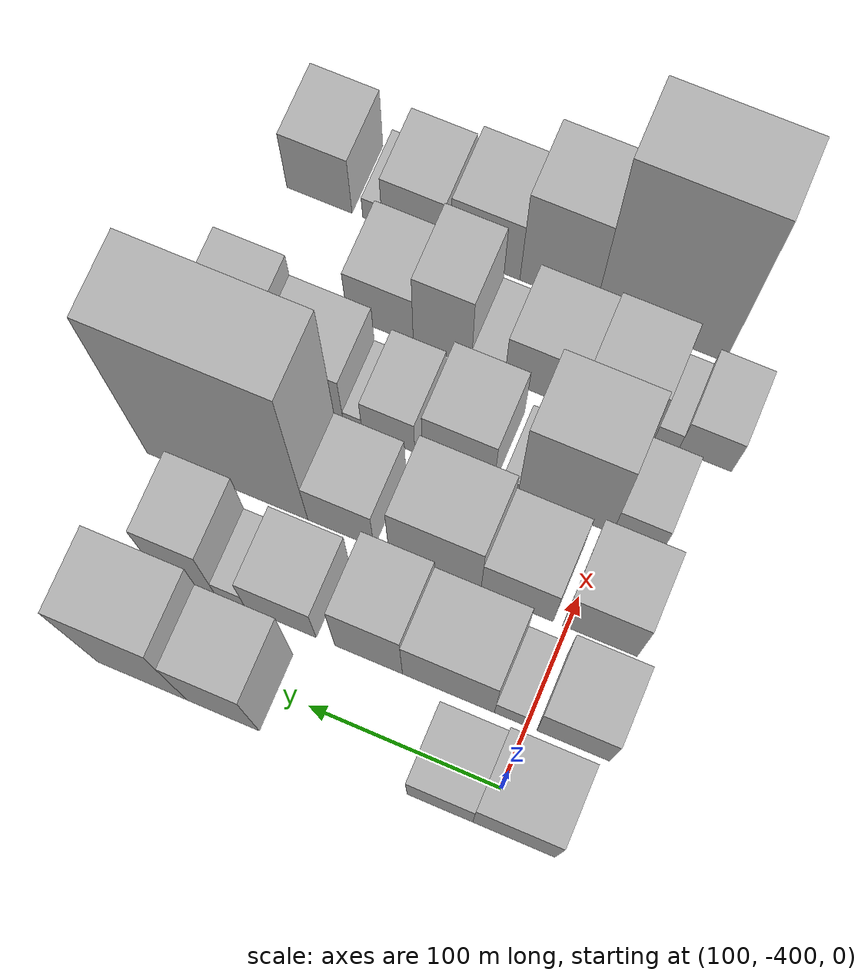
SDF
<sdf version="1.6">
 <world name="default">
  <model name="building_12">
   <static>1</static>
   <pose>100.0000 -414.7524 0 0.000000 0.000000 0.000000</pose>
   <link name="link">
    <pose>0 0 39.00 0 0 0</pose>
    <collision name="collision"><geometry><box><size>40.0000 42.1300 78.0000</size></box></geometry></collision>
    <visual name="visual">
     <cast_shadows>0</cast_shadows>
     <geometry><box><size>40.0000 42.1300 78.0000</size></box></geometry>
     <material>
      <script>
       <uri>model://HANNAS_wall/materials/scripts</uri>
       <uri>model://HANNAS_wall/materials/textures</uri>
       <name>vrc/HANNAS_wall</name>
      </script>
     </material>
    </visual>
   </link>
  </model>
  <model name="building_13">
   <static>1</static>
   <pose>100.0000 -376.7579 0 0.000000 0.000000 0.000000</pose>
   <link name="link">
    <pose>0 0 31.50 0 0 0</pose>
    <collision name="collision"><geometry><box><size>40.0000 33.8590 63.0000</size></box></geometry></collision>
    <visual name="visual">
     <cast_shadows>0</cast_shadows>
     <geometry><box><size>40.0000 33.8590 63.0000</size></box></geometry>
     <material>
      <script>
       <uri>model://HANNAS_wall/materials/scripts</uri>
       <uri>model://HANNAS_wall/materials/textures</uri>
       <name>vrc/HANNAS_wall</name>
      </script>
     </material>
    </visual>
   </link>
  </model>
  <model name="building_14">
   <static>1</static>
   <pose>100.0000 -263.6347 0 0.000000 0.000000 0.000000</pose>
   <link name="link">
    <pose>0 0 55.50 0 0 0</pose>
    <collision name="collision"><geometry><box><size>40.0000 38.1291 111.0000</size></box></geometry></collision>
    <visual name="visual">
     <cast_shadows>0</cast_shadows>
     <geometry><box><size>40.0000 38.1291 111.0000</size></box></geometry>
     <material>
      <script>
       <uri>model://HANNAS_wall/materials/scripts</uri>
       <uri>model://HANNAS_wall/materials/textures</uri>
       <name>vrc/HANNAS_wall</name>
      </script>
     </material>
    </visual>
   </link>
  </model>
  <model name="building_15">
   <static>1</static>
   <pose>100.0000 -220.7925 0 0.000000 0.000000 0.000000</pose>
   <link name="link">
    <pose>0 0 73.50 0 0 0</pose>
    <collision name="collision"><geometry><box><size>40.0000 47.5555 147.0000</size></box></geometry></collision>
    <visual name="visual">
     <cast_shadows>0</cast_shadows>
     <geometry><box><size>40.0000 47.5555 147.0000</size></box></geometry>
     <material>
      <script>
       <uri>model://HANNAS_wall/materials/scripts</uri>
       <uri>model://HANNAS_wall/materials/textures</uri>
       <name>vrc/HANNAS_wall</name>
      </script>
     </material>
    </visual>
   </link>
  </model>
  <model name="building_61">
   <static>1</static>
   <pose>152.0000 -424.2948 0 0.000000 0.000000 0.000000</pose>
   <link name="link">
    <pose>0 0 31.50 0 0 0</pose>
    <collision name="collision"><geometry><box><size>40.0000 37.7740 63.0000</size></box></geometry></collision>
    <visual name="visual">
     <cast_shadows>0</cast_shadows>
     <geometry><box><size>40.0000 37.7740 63.0000</size></box></geometry>
     <material>
      <script>
       <uri>model://HANNAS_wall/materials/scripts</uri>
       <uri>model://HANNAS_wall/materials/textures</uri>
       <name>vrc/HANNAS_wall</name>
      </script>
     </material>
    </visual>
   </link>
  </model>
  <model name="building_62">
   <static>1</static>
   <pose>152.0000 -392.3795 0 0.000000 0.000000 0.000000</pose>
   <link name="link">
    <pose>0 0 16.50 0 0 0</pose>
    <collision name="collision"><geometry><box><size>40.0000 18.0567 33.0000</size></box></geometry></collision>
    <visual name="visual">
     <cast_shadows>0</cast_shadows>
     <geometry><box><size>40.0000 18.0567 33.0000</size></box></geometry>
     <material>
      <script>
       <uri>model://HANNAS_wall/materials/scripts</uri>
       <uri>model://HANNAS_wall/materials/textures</uri>
       <name>vrc/HANNAS_wall</name>
      </script>
     </material>
    </visual>
   </link>
  </model>
  <model name="building_63">
   <static>1</static>
   <pose>152.0000 -359.3087 0 0.000000 0.000000 0.000000</pose>
   <link name="link">
    <pose>0 0 42.00 0 0 0</pose>
    <collision name="collision"><geometry><box><size>40.0000 48.0849 84.0000</size></box></geometry></collision>
    <visual name="visual">
     <cast_shadows>0</cast_shadows>
     <geometry><box><size>40.0000 48.0849 84.0000</size></box></geometry>
     <material>
      <script>
       <uri>model://HANNAS_wall/materials/scripts</uri>
       <uri>model://HANNAS_wall/materials/textures</uri>
       <name>vrc/HANNAS_wall</name>
      </script>
     </material>
    </visual>
   </link>
  </model>
  <model name="building_64">
   <static>1</static>
   <pose>152.0000 -317.4862 0 0.000000 0.000000 0.000000</pose>
   <link name="link">
    <pose>0 0 48.00 0 0 0</pose>
    <collision name="collision"><geometry><box><size>40.0000 35.5601 96.0000</size></box></geometry></collision>
    <visual name="visual">
     <cast_shadows>0</cast_shadows>
     <geometry><box><size>40.0000 35.5601 96.0000</size></box></geometry>
     <material>
      <script>
       <uri>model://HANNAS_wall/materials/scripts</uri>
       <uri>model://HANNAS_wall/materials/textures</uri>
       <name>vrc/HANNAS_wall</name>
      </script>
     </material>
    </visual>
   </link>
  </model>
  <model name="building_65">
   <static>1</static>
   <pose>152.0000 -270.8084 0 0.000000 0.000000 0.000000</pose>
   <link name="link">
    <pose>0 0 31.50 0 0 0</pose>
    <collision name="collision"><geometry><box><size>40.0000 37.7956 63.0000</size></box></geometry></collision>
    <visual name="visual">
     <cast_shadows>0</cast_shadows>
     <geometry><box><size>40.0000 37.7956 63.0000</size></box></geometry>
     <material>
      <script>
       <uri>model://HANNAS_wall/materials/scripts</uri>
       <uri>model://HANNAS_wall/materials/textures</uri>
       <name>vrc/HANNAS_wall</name>
      </script>
     </material>
    </visual>
   </link>
  </model>
  <model name="building_66">
   <static>1</static>
   <pose>152.0000 -243.9761 0 0.000000 0.000000 0.000000</pose>
   <link name="link">
    <pose>0 0 15.00 0 0 0</pose>
    <collision name="collision"><geometry><box><size>40.0000 15.8689 30.0000</size></box></geometry></collision>
    <visual name="visual">
     <cast_shadows>0</cast_shadows>
     <geometry><box><size>40.0000 15.8689 30.0000</size></box></geometry>
     <material>
      <script>
       <uri>model://HANNAS_wall/materials/scripts</uri>
       <uri>model://HANNAS_wall/materials/textures</uri>
       <name>vrc/HANNAS_wall</name>
      </script>
     </material>
    </visual>
   </link>
  </model>
  <model name="building_67">
   <static>1</static>
   <pose>152.0000 -219.7628 0 0.000000 0.000000 0.000000</pose>
   <link name="link">
    <pose>0 0 46.50 0 0 0</pose>
    <collision name="collision"><geometry><box><size>40.0000 32.5576 93.0000</size></box></geometry></collision>
    <visual name="visual">
     <cast_shadows>0</cast_shadows>
     <geometry><box><size>40.0000 32.5576 93.0000</size></box></geometry>
     <material>
      <script>
       <uri>model://HANNAS_wall/materials/scripts</uri>
       <uri>model://HANNAS_wall/materials/textures</uri>
       <name>vrc/HANNAS_wall</name>
      </script>
     </material>
    </visual>
   </link>
  </model>
  <model name="building_108">
   <static>1</static>
   <pose>204.0000 -417.3247 0 0.000000 0.000000 0.000000</pose>
   <link name="link">
    <pose>0 0 37.50 0 0 0</pose>
    <collision name="collision"><geometry><box><size>40.0000 39.0101 75.0000</size></box></geometry></collision>
    <visual name="visual">
     <cast_shadows>0</cast_shadows>
     <geometry><box><size>40.0000 39.0101 75.0000</size></box></geometry>
     <material>
      <script>
       <uri>model://HANNAS_wall/materials/scripts</uri>
       <uri>model://HANNAS_wall/materials/textures</uri>
       <name>vrc/HANNAS_wall</name>
      </script>
     </material>
    </visual>
   </link>
  </model>
  <model name="building_109">
   <static>1</static>
   <pose>204.0000 -373.7194 0 0.000000 0.000000 0.000000</pose>
   <link name="link">
    <pose>0 0 33.00 0 0 0</pose>
    <collision name="collision"><geometry><box><size>40.0000 38.2007 66.0000</size></box></geometry></collision>
    <visual name="visual">
     <cast_shadows>0</cast_shadows>
     <geometry><box><size>40.0000 38.2007 66.0000</size></box></geometry>
     <material>
      <script>
       <uri>model://HANNAS_wall/materials/scripts</uri>
       <uri>model://HANNAS_wall/materials/textures</uri>
       <name>vrc/HANNAS_wall</name>
      </script>
     </material>
    </visual>
   </link>
  </model>
  <model name="building_110">
   <static>1</static>
   <pose>204.0000 -330.2801 0 0.000000 0.000000 0.000000</pose>
   <link name="link">
    <pose>0 0 45.00 0 0 0</pose>
    <collision name="collision"><geometry><box><size>40.0000 48.6779 90.0000</size></box></geometry></collision>
    <visual name="visual">
     <cast_shadows>0</cast_shadows>
     <geometry><box><size>40.0000 48.6779 90.0000</size></box></geometry>
     <material>
      <script>
       <uri>model://HANNAS_wall/materials/scripts</uri>
       <uri>model://HANNAS_wall/materials/textures</uri>
       <name>vrc/HANNAS_wall</name>
      </script>
     </material>
    </visual>
   </link>
  </model>
  <model name="building_111">
   <static>1</static>
   <pose>204.0000 -280.1822 0 0.000000 0.000000 0.000000</pose>
   <link name="link">
    <pose>0 0 33.00 0 0 0</pose>
    <collision name="collision"><geometry><box><size>40.0000 35.5178 66.0000</size></box></geometry></collision>
    <visual name="visual">
     <cast_shadows>0</cast_shadows>
     <geometry><box><size>40.0000 35.5178 66.0000</size></box></geometry>
     <material>
      <script>
       <uri>model://HANNAS_wall/materials/scripts</uri>
       <uri>model://HANNAS_wall/materials/textures</uri>
       <name>vrc/HANNAS_wall</name>
      </script>
     </material>
    </visual>
   </link>
  </model>
  <model name="building_112">
   <static>1</static>
   <pose>204.0000 -218.7964 0 0.000000 0.000000 0.000000</pose>
   <link name="link">
    <pose>0 0 109.50 0 0 0</pose>
    <collision name="collision"><geometry><box><size>40.0000 87.2537 219.0000</size></box></geometry></collision>
    <visual name="visual">
     <cast_shadows>0</cast_shadows>
     <geometry><box><size>40.0000 87.2537 219.0000</size></box></geometry>
     <material>
      <script>
       <uri>model://HANNAS_wall/materials/scripts</uri>
       <uri>model://HANNAS_wall/materials/textures</uri>
       <name>vrc/HANNAS_wall</name>
      </script>
     </material>
    </visual>
   </link>
  </model>
  <model name="building_154">
   <static>1</static>
   <pose>256.0000 -416.1713 0 0.000000 0.000000 0.000000</pose>
   <link name="link">
    <pose>0 0 24.00 0 0 0</pose>
    <collision name="collision"><geometry><box><size>40.0000 25.7418 48.0000</size></box></geometry></collision>
    <visual name="visual">
     <cast_shadows>0</cast_shadows>
     <geometry><box><size>40.0000 25.7418 48.0000</size></box></geometry>
     <material>
      <script>
       <uri>model://HANNAS_wall/materials/scripts</uri>
       <uri>model://HANNAS_wall/materials/textures</uri>
       <name>vrc/HANNAS_wall</name>
      </script>
     </material>
    </visual>
   </link>
  </model>
  <model name="building_155">
   <static>1</static>
   <pose>256.0000 -378.1142 0 0.000000 0.000000 0.000000</pose>
   <link name="link">
    <pose>0 0 63.00 0 0 0</pose>
    <collision name="collision"><geometry><box><size>40.0000 50.3724 126.0000</size></box></geometry></collision>
    <visual name="visual">
     <cast_shadows>0</cast_shadows>
     <geometry><box><size>40.0000 50.3724 126.0000</size></box></geometry>
     <material>
      <script>
       <uri>model://HANNAS_wall/materials/scripts</uri>
       <uri>model://HANNAS_wall/materials/textures</uri>
       <name>vrc/HANNAS_wall</name>
      </script>
     </material>
    </visual>
   </link>
  </model>
  <model name="building_156">
   <static>1</static>
   <pose>256.0000 -348.5246 0 0.000000 0.000000 0.000000</pose>
   <link name="link">
    <pose>0 0 10.50 0 0 0</pose>
    <collision name="collision"><geometry><box><size>40.0000 8.8067 21.0000</size></box></geometry></collision>
    <visual name="visual">
     <cast_shadows>0</cast_shadows>
     <geometry><box><size>40.0000 8.8067 21.0000</size></box></geometry>
     <material>
      <script>
       <uri>model://HANNAS_wall/materials/scripts</uri>
       <uri>model://HANNAS_wall/materials/textures</uri>
       <name>vrc/HANNAS_wall</name>
      </script>
     </material>
    </visual>
   </link>
  </model>
  <model name="building_157">
   <static>1</static>
   <pose>256.0000 -320.8390 0 0.000000 0.000000 0.000000</pose>
   <link name="link">
    <pose>0 0 36.00 0 0 0</pose>
    <collision name="collision"><geometry><box><size>40.0000 38.5646 72.0000</size></box></geometry></collision>
    <visual name="visual">
     <cast_shadows>0</cast_shadows>
     <geometry><box><size>40.0000 38.5646 72.0000</size></box></geometry>
     <material>
      <script>
       <uri>model://HANNAS_wall/materials/scripts</uri>
       <uri>model://HANNAS_wall/materials/textures</uri>
       <name>vrc/HANNAS_wall</name>
      </script>
     </material>
    </visual>
   </link>
  </model>
  <model name="building_158">
   <static>1</static>
   <pose>256.0000 -283.3070 0 0.000000 0.000000 0.000000</pose>
   <link name="link">
    <pose>0 0 25.50 0 0 0</pose>
    <collision name="collision"><geometry><box><size>40.0000 28.4994 51.0000</size></box></geometry></collision>
    <visual name="visual">
     <cast_shadows>0</cast_shadows>
     <geometry><box><size>40.0000 28.4994 51.0000</size></box></geometry>
     <material>
      <script>
       <uri>model://HANNAS_wall/materials/scripts</uri>
       <uri>model://HANNAS_wall/materials/textures</uri>
       <name>vrc/HANNAS_wall</name>
      </script>
     </material>
    </visual>
   </link>
  </model>
  <model name="building_159">
   <static>1</static>
   <pose>256.0000 -264.0469 0 0.000000 0.000000 0.000000</pose>
   <link name="link">
    <pose>0 0 10.50 0 0 0</pose>
    <collision name="collision"><geometry><box><size>40.0000 10.0209 21.0000</size></box></geometry></collision>
    <visual name="visual">
     <cast_shadows>0</cast_shadows>
     <geometry><box><size>40.0000 10.0209 21.0000</size></box></geometry>
     <material>
      <script>
       <uri>model://HANNAS_wall/materials/scripts</uri>
       <uri>model://HANNAS_wall/materials/textures</uri>
       <name>vrc/HANNAS_wall</name>
      </script>
     </material>
    </visual>
   </link>
  </model>
  <model name="building_160">
   <static>1</static>
   <pose>256.0000 -238.0964 0 0.000000 0.000000 0.000000</pose>
   <link name="link">
    <pose>0 0 36.00 0 0 0</pose>
    <collision name="collision"><geometry><box><size>40.0000 41.8801 72.0000</size></box></geometry></collision>
    <visual name="visual">
     <cast_shadows>0</cast_shadows>
     <geometry><box><size>40.0000 41.8801 72.0000</size></box></geometry>
     <material>
      <script>
       <uri>model://HANNAS_wall/materials/scripts</uri>
       <uri>model://HANNAS_wall/materials/textures</uri>
       <name>vrc/HANNAS_wall</name>
      </script>
     </material>
    </visual>
   </link>
  </model>
  <model name="building_161">
   <static>1</static>
   <pose>256.0000 -199.1491 0 0.000000 0.000000 0.000000</pose>
   <link name="link">
    <pose>0 0 49.50 0 0 0</pose>
    <collision name="collision"><geometry><box><size>40.0000 36.0144 99.0000</size></box></geometry></collision>
    <visual name="visual">
     <cast_shadows>0</cast_shadows>
     <geometry><box><size>40.0000 36.0144 99.0000</size></box></geometry>
     <material>
      <script>
       <uri>model://HANNAS_wall/materials/scripts</uri>
       <uri>model://HANNAS_wall/materials/textures</uri>
       <name>vrc/HANNAS_wall</name>
      </script>
     </material>
    </visual>
   </link>
  </model>
  <model name="building_206">
   <static>1</static>
   <pose>308.0000 -432.1369 0 0.000000 0.000000 0.000000</pose>
   <link name="link">
    <pose>0 0 25.50 0 0 0</pose>
    <collision name="collision"><geometry><box><size>40.0000 28.2243 51.0000</size></box></geometry></collision>
    <visual name="visual">
     <cast_shadows>0</cast_shadows>
     <geometry><box><size>40.0000 28.2243 51.0000</size></box></geometry>
     <material>
      <script>
       <uri>model://HANNAS_wall/materials/scripts</uri>
       <uri>model://HANNAS_wall/materials/textures</uri>
       <name>vrc/HANNAS_wall</name>
      </script>
     </material>
    </visual>
   </link>
  </model>
  <model name="building_207">
   <static>1</static>
   <pose>308.0000 -411.4995 0 0.000000 0.000000 0.000000</pose>
   <link name="link">
    <pose>0 0 13.50 0 0 0</pose>
    <collision name="collision"><geometry><box><size>40.0000 13.0505 27.0000</size></box></geometry></collision>
    <visual name="visual">
     <cast_shadows>0</cast_shadows>
     <geometry><box><size>40.0000 13.0505 27.0000</size></box></geometry>
     <material>
      <script>
       <uri>model://HANNAS_wall/materials/scripts</uri>
       <uri>model://HANNAS_wall/materials/textures</uri>
       <name>vrc/HANNAS_wall</name>
      </script>
     </material>
    </visual>
   </link>
  </model>
  <model name="building_208">
   <static>1</static>
   <pose>308.0000 -385.0826 0 0.000000 0.000000 0.000000</pose>
   <link name="link">
    <pose>0 0 37.50 0 0 0</pose>
    <collision name="collision"><geometry><box><size>40.0000 39.7833 75.0000</size></box></geometry></collision>
    <visual name="visual">
     <cast_shadows>0</cast_shadows>
     <geometry><box><size>40.0000 39.7833 75.0000</size></box></geometry>
     <material>
      <script>
       <uri>model://HANNAS_wall/materials/scripts</uri>
       <uri>model://HANNAS_wall/materials/textures</uri>
       <name>vrc/HANNAS_wall</name>
      </script>
     </material>
    </visual>
   </link>
  </model>
  <model name="building_209">
   <static>1</static>
   <pose>308.0000 -344.7418 0 0.000000 0.000000 0.000000</pose>
   <link name="link">
    <pose>0 0 34.50 0 0 0</pose>
    <collision name="collision"><geometry><box><size>40.0000 40.8983 69.0000</size></box></geometry></collision>
    <visual name="visual">
     <cast_shadows>0</cast_shadows>
     <geometry><box><size>40.0000 40.8983 69.0000</size></box></geometry>
     <material>
      <script>
       <uri>model://HANNAS_wall/materials/scripts</uri>
       <uri>model://HANNAS_wall/materials/textures</uri>
       <name>vrc/HANNAS_wall</name>
      </script>
     </material>
    </visual>
   </link>
  </model>
  <model name="building_210">
   <static>1</static>
   <pose>308.0000 -315.3176 0 0.000000 0.000000 0.000000</pose>
   <link name="link">
    <pose>0 0 15.00 0 0 0</pose>
    <collision name="collision"><geometry><box><size>40.0000 17.9500 30.0000</size></box></geometry></collision>
    <visual name="visual">
     <cast_shadows>0</cast_shadows>
     <geometry><box><size>40.0000 17.9500 30.0000</size></box></geometry>
     <material>
      <script>
       <uri>model://HANNAS_wall/materials/scripts</uri>
       <uri>model://HANNAS_wall/materials/textures</uri>
       <name>vrc/HANNAS_wall</name>
      </script>
     </material>
    </visual>
   </link>
  </model>
  <model name="building_211">
   <static>1</static>
   <pose>308.0000 -290.5071 0 0.000000 0.000000 0.000000</pose>
   <link name="link">
    <pose>0 0 49.50 0 0 0</pose>
    <collision name="collision"><geometry><box><size>40.0000 31.6709 99.0000</size></box></geometry></collision>
    <visual name="visual">
     <cast_shadows>0</cast_shadows>
     <geometry><box><size>40.0000 31.6709 99.0000</size></box></geometry>
     <material>
      <script>
       <uri>model://HANNAS_wall/materials/scripts</uri>
       <uri>model://HANNAS_wall/materials/textures</uri>
       <name>vrc/HANNAS_wall</name>
      </script>
     </material>
    </visual>
   </link>
  </model>
  <model name="building_212">
   <static>1</static>
   <pose>308.0000 -256.4860 0 0.000000 0.000000 0.000000</pose>
   <link name="link">
    <pose>0 0 33.00 0 0 0</pose>
    <collision name="collision"><geometry><box><size>40.0000 36.3713 66.0000</size></box></geometry></collision>
    <visual name="visual">
     <cast_shadows>0</cast_shadows>
     <geometry><box><size>40.0000 36.3713 66.0000</size></box></geometry>
     <material>
      <script>
       <uri>model://HANNAS_wall/materials/scripts</uri>
       <uri>model://HANNAS_wall/materials/textures</uri>
       <name>vrc/HANNAS_wall</name>
      </script>
     </material>
    </visual>
   </link>
  </model>
  <model name="building_255">
   <static>1</static>
   <pose>360.0000 -387.8253 0 0.000000 0.000000 0.000000</pose>
   <link name="link">
    <pose>0 0 99.00 0 0 0</pose>
    <collision name="collision"><geometry><box><size>40.0000 70.3065 198.0000</size></box></geometry></collision>
    <visual name="visual">
     <cast_shadows>0</cast_shadows>
     <geometry><box><size>40.0000 70.3065 198.0000</size></box></geometry>
     <material>
      <script>
       <uri>model://HANNAS_wall/materials/scripts</uri>
       <uri>model://HANNAS_wall/materials/textures</uri>
       <name>vrc/HANNAS_wall</name>
      </script>
     </material>
    </visual>
   </link>
  </model>
  <model name="building_256">
   <static>1</static>
   <pose>360.0000 -332.0346 0 0.000000 0.000000 0.000000</pose>
   <link name="link">
    <pose>0 0 58.50 0 0 0</pose>
    <collision name="collision"><geometry><box><size>40.0000 41.2749 117.0000</size></box></geometry></collision>
    <visual name="visual">
     <cast_shadows>0</cast_shadows>
     <geometry><box><size>40.0000 41.2749 117.0000</size></box></geometry>
     <material>
      <script>
       <uri>model://HANNAS_wall/materials/scripts</uri>
       <uri>model://HANNAS_wall/materials/textures</uri>
       <name>vrc/HANNAS_wall</name>
      </script>
     </material>
    </visual>
   </link>
  </model>
  <model name="building_257">
   <static>1</static>
   <pose>360.0000 -292.3532 0 0.000000 0.000000 0.000000</pose>
   <link name="link">
    <pose>0 0 37.50 0 0 0</pose>
    <collision name="collision"><geometry><box><size>40.0000 38.0878 75.0000</size></box></geometry></collision>
    <visual name="visual">
     <cast_shadows>0</cast_shadows>
     <geometry><box><size>40.0000 38.0878 75.0000</size></box></geometry>
     <material>
      <script>
       <uri>model://HANNAS_wall/materials/scripts</uri>
       <uri>model://HANNAS_wall/materials/textures</uri>
       <name>vrc/HANNAS_wall</name>
      </script>
     </material>
    </visual>
   </link>
  </model>
  <model name="building_258">
   <static>1</static>
   <pose>360.0000 -252.8329 0 0.000000 0.000000 0.000000</pose>
   <link name="link">
    <pose>0 0 31.50 0 0 0</pose>
    <collision name="collision"><geometry><box><size>40.0000 34.9529 63.0000</size></box></geometry></collision>
    <visual name="visual">
     <cast_shadows>0</cast_shadows>
     <geometry><box><size>40.0000 34.9529 63.0000</size></box></geometry>
     <material>
      <script>
       <uri>model://HANNAS_wall/materials/scripts</uri>
       <uri>model://HANNAS_wall/materials/textures</uri>
       <name>vrc/HANNAS_wall</name>
      </script>
     </material>
    </visual>
   </link>
  </model>
  <model name="building_259">
   <static>1</static>
   <pose>360.0000 -229.9152 0 0.000000 0.000000 0.000000</pose>
   <link name="link">
    <pose>0 0 13.50 0 0 0</pose>
    <collision name="collision"><geometry><box><size>40.0000 10.8825 27.0000</size></box></geometry></collision>
    <visual name="visual">
     <cast_shadows>0</cast_shadows>
     <geometry><box><size>40.0000 10.8825 27.0000</size></box></geometry>
     <material>
      <script>
       <uri>model://HANNAS_wall/materials/scripts</uri>
       <uri>model://HANNAS_wall/materials/textures</uri>
       <name>vrc/HANNAS_wall</name>
      </script>
     </material>
    </visual>
   </link>
  </model>
  <model name="building_260">
   <static>1</static>
   <pose>360.0000 -200.2231 0 0.000000 0.000000 0.000000</pose>
   <link name="link">
    <pose>0 0 34.50 0 0 0</pose>
    <collision name="collision"><geometry><box><size>40.0000 36.5017 69.0000</size></box></geometry></collision>
    <visual name="visual">
     <cast_shadows>0</cast_shadows>
     <geometry><box><size>40.0000 36.5017 69.0000</size></box></geometry>
     <material>
      <script>
       <uri>model://HANNAS_wall/materials/scripts</uri>
       <uri>model://HANNAS_wall/materials/textures</uri>
       <name>vrc/HANNAS_wall</name>
      </script>
     </material>
    </visual>
   </link>
  </model>
 </world>
</sdf>
